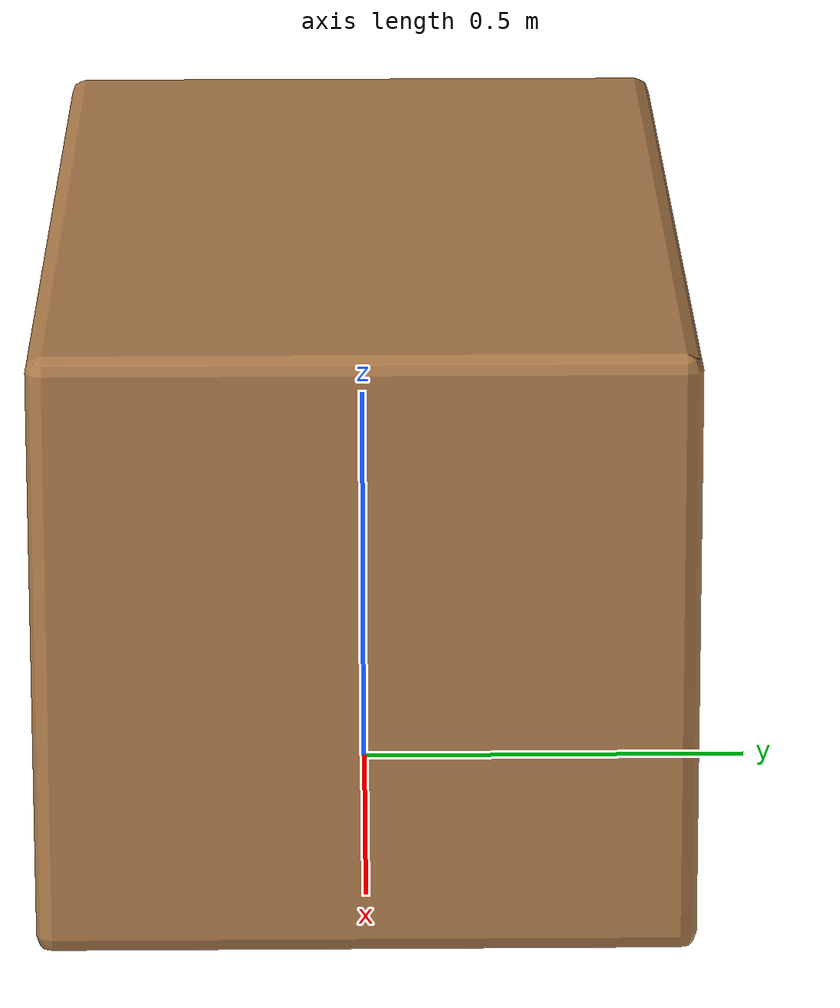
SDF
<?xml version="1.0" ?>
<sdf version="1.5">
  <model name="lab_desk">
    <static>true</static>
    <link name='defaultModel_0::custom_0'>
      <pose>0 0 0 0 0 0</pose>
      <gravity>1</gravity>
      <self_collide>0</self_collide>
      <kinematic>0</kinematic>
      <visual name='custom_0_visual'>
        <pose>0 0 0 1.5709 0 0</pose>
        <geometry>
          <mesh>
            <uri>model://lab_desk/lab_desk.dae</uri>
            <scale>0.01 0.01 0.01</scale>
          </mesh>
        </geometry>
        <material>
          <script>
            <uri>file://media/materials/scripts/gazebo.material</uri>
            <name>Gazebo/Wood</name>
          </script>
        </material>
      </visual>
      <collision name='defaultModel_0::custom_0_collision'>
        <geometry>
          <mesh>
            <uri>model://lab_desk/lab_desk.dae</uri>
            <scale>0.01 0.01 0.01</scale>
          </mesh>
        </geometry>
        <pose>0 0 0 1.5709 0 0</pose>
      </collision>
    </link>
  </model>
</sdf>
